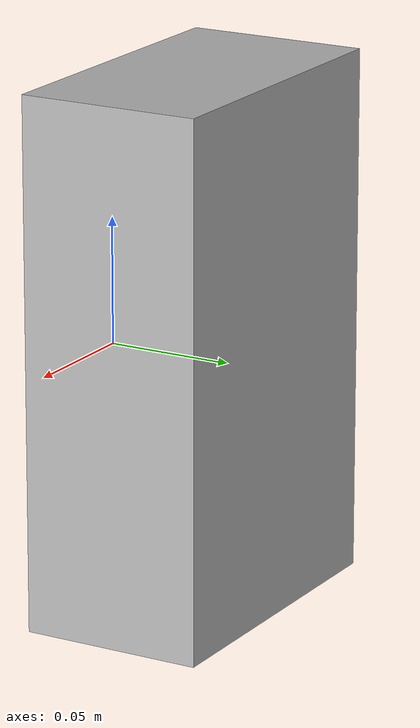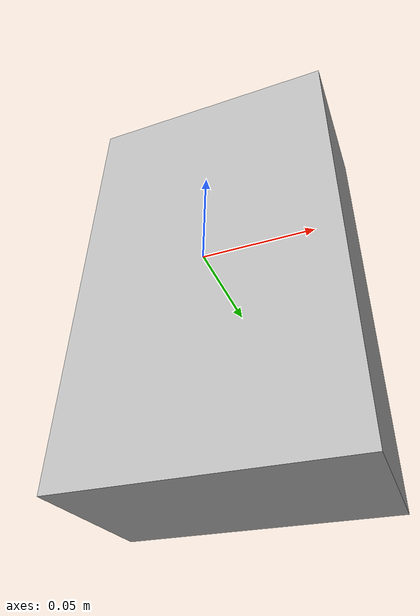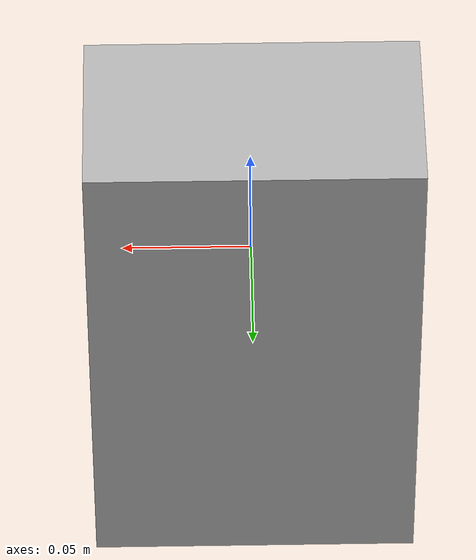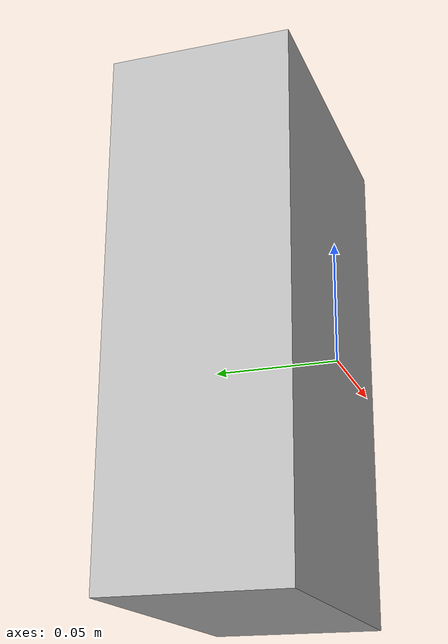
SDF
<?xml version="1.0" ?>
<sdf version="1.4">
  <model name="shelf3_box3_2a">
    <link name="body">
      <pose>0 0 0 0 0 0</pose>
      <inertial>
        <pose>  -0.000415   0.035677   0.007155 0 0 0</pose>
        <mass>0.5</mass>
        <inertia>
          <ixx>0.01</ixx>
          <ixy>0</ixy>
          <ixz>0</ixz>
          <iyy>0.01</iyy>
          <iyz>0</iyz>
          <izz>0.01</izz>
        </inertia>
      </inertial>
      <collision name="collision">
        <geometry>
          <mesh>
            <uri>model://bookshelf/shelf3_items/box3_2a/box3_2a.dae</uri>
          </mesh>
        </geometry>
      </collision>
      <visual name="visual">
        <geometry>
          <mesh>
            <uri>model://bookshelf/shelf3_items/box3_2a/box3_2a.dae</uri>
          </mesh>
        </geometry>
      </visual>
    </link>
  </model>
</sdf>
